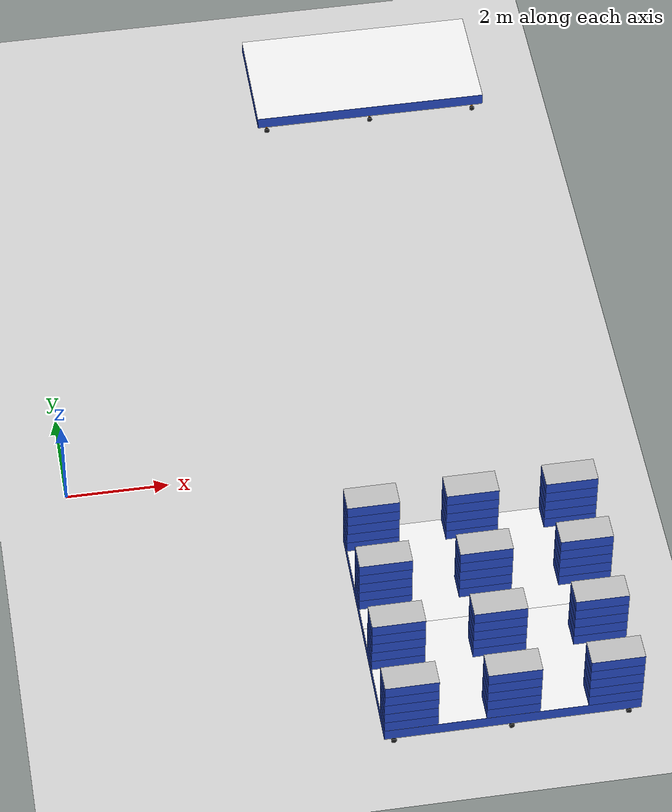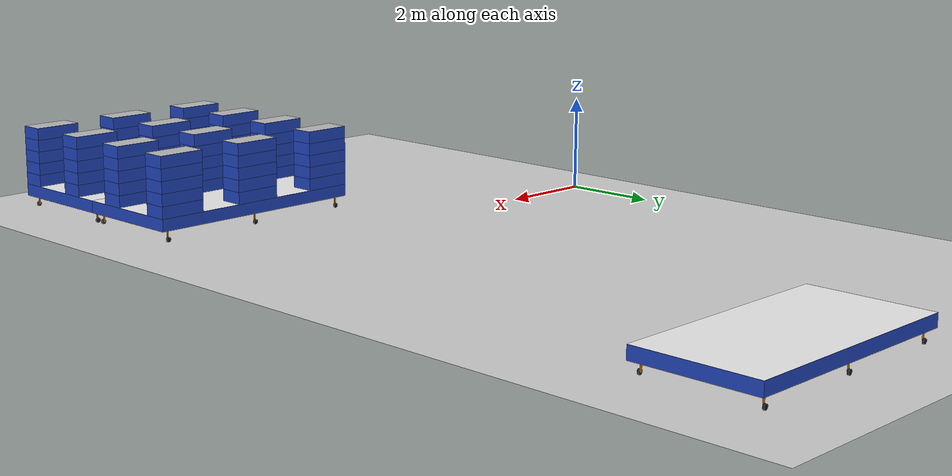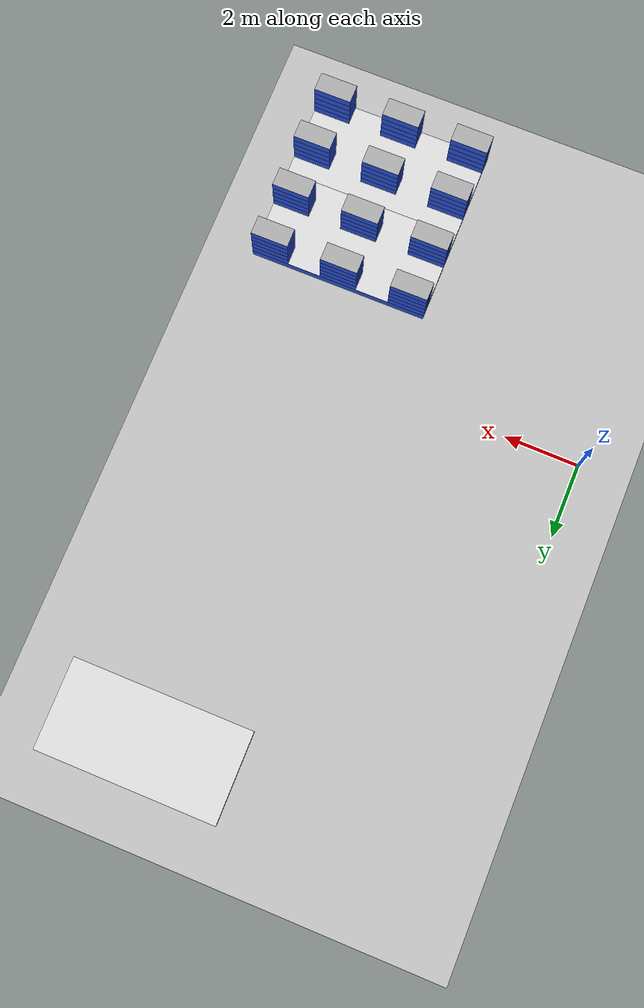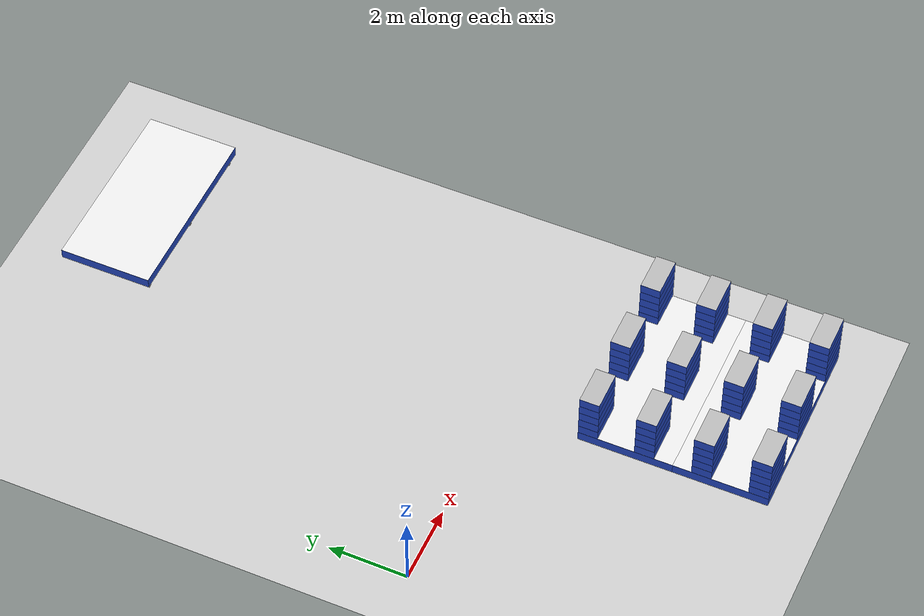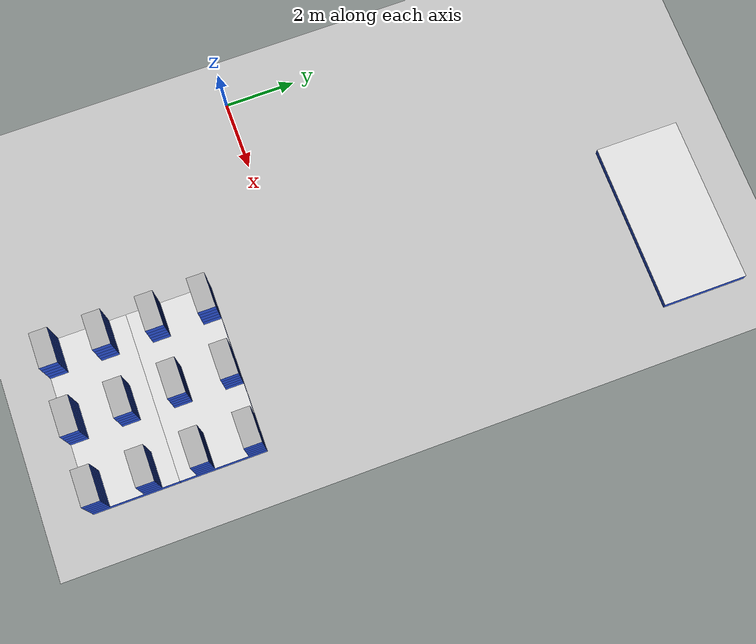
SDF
<?xml version="1.0" ?>
<sdf version="1.4">
  <world name="tian_gong_zhu_ta">
    <include>
      <uri>model://sun</uri>
    </include>
    <include>
      <uri>model://heliport</uri>
      <name>heliport</name>
      <static>true</static>
      <pose>0 0 0 0 0 3.1415926</pose>
    </include>
    <include>
      <uri>model://chassis</uri>
      <name>chassis</name>
      <static>true</static>
      <pose>7.5 10.5 0 0 0 0</pose>
    </include>
    <include>
      <uri>model://box_stack</uri>
      <name>box_stack</name>
      <pose>7.5 -4.5 0 0 0 0</pose>
    </include>
    <spherical_coordinates>
      <surface_model>EARTH_WGS84</surface_model>
      <latitude_deg>47.3667</latitude_deg>
      <longitude_deg>8.5500</longitude_deg>
      <elevation>500.0</elevation>
      <heading_deg>0</heading_deg>
    </spherical_coordinates>
    <physics type='ode'>
      <ode>
        <solver>
          <type>quick</type>
          <iters>1000</iters>
          <sor>1.3</sor>
        </solver>
        <constraints>
          <cfm>0</cfm>
          <erp>0.2</erp>
          <contact_max_correcting_vel>100</contact_max_correcting_vel>
          <contact_surface_layer>0.001</contact_surface_layer>
        </constraints>
      </ode>
      <max_step_size>0.005</max_step_size>
      <!-- real_time_factor = max_step_size * real_time_update_rate -->
      <real_time_factor>1</real_time_factor>
      <real_time_update_rate>200</real_time_update_rate>
      <gravity>0 0 -9.8</gravity>
    </physics>
  </world>
</sdf>

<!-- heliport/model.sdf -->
<sdf version='1.6'>
  <model name='heliport'>
    <static>true</static>
    <link name='ground'>
      <collision name='collision'>
        <geometry>
          <plane>
            <normal>0 0 1</normal>
            <size>45 30</size>
          </plane>
        </geometry>
        <surface>
          <friction>
            <ode>
              <mu>100</mu>
              <mu2>50</mu2>
            </ode>
          </friction>
          <bounce/>
          <contact>
            <ode/>
          </contact>
        </surface>
        <max_contacts>10</max_contacts>
      </collision>
      <visual name='visual'>
        <cast_shadows>0</cast_shadows>
        <geometry>
          <plane>
            <normal>0 0 1</normal>
            <size>45 30</size>
          </plane>
        </geometry>
        <material>
          <script>
            <uri>model://heliport/materials/scripts</uri>
            <uri>model://heliport/materials/textures</uri>
            <name>concrete_ground</name>
          </script>
        </material>
      </visual>
    </link>
  </model>
</sdf>

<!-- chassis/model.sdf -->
<sdf version='1.6'>
  <model name='chassis'>
    <static>false</static>
    <link name='base_link'>
      <inertial>
        <pose>0 0 0.375 0 0 0</pose>
        <mass>120</mass>
        <inertia>
          <ixx>58.225</ixx>
          <ixy>0</ixy>
          <ixz>0</ixz>
          <iyy>231.025</iyy>
          <iyz>0</iyz>
          <izz>288</izz>
        </inertia>
      </inertial>
      <collision name='base0'>
        <pose>0 0 0.375 0 0 0</pose>
        <geometry>
          <box>
            <size>4.8 2.4 0.25</size>
          </box>
        </geometry>
        <surface>
          <friction>
            <ode>
              <mu>100</mu>
              <mu2>50</mu2>
            </ode>
          </friction>
        </surface>
      </collision>
      <visual name='base0'>
        <cast_shadows>1</cast_shadows>
        <pose>0 0 0.375 0 0 0</pose>
        <geometry>
          <box>
            <size>4.8 2.4 0.25</size>
          </box>
        </geometry>
        <material>
          <script>
            <uri>file://media/materials/scripts/gazebo.material</uri>
            <name>Gazebo/Blue</name>
          </script>
        </material>
      </visual>
      <visual name='base1'>
        <cast_shadows>0</cast_shadows>
        <pose>0 0 0.502 0 0 0</pose>
        <geometry>
          <plane>
            <normal>0 0 1</normal>
            <size>4.8 2.4</size>
          </plane>
        </geometry>
        <material>
          <script>
            <uri>file://media/materials/scripts/gazebo.material</uri>
            <name>Gazebo/White</name>
          </script>
        </material>
      </visual>
      <visual name='base2'>
        <cast_shadows>0</cast_shadows>
        <pose>0 0 0.248 3.1415926 0 0</pose>
        <geometry>
          <plane>
            <normal>0 0 1</normal>
            <size>4.8 2.4</size>
          </plane>
        </geometry>
        <material>
          <script>
            <uri>file://media/materials/scripts/gazebo.material</uri>
            <name>Gazebo/White</name>
          </script>
        </material>
      </visual>
    </link>

    <joint name="wheel_joint0" type="fixed">
      <parent>base_link</parent>
      <child>wheel_link0</child>
    </joint>
    <joint name="wheel_joint1" type="fixed">
      <parent>base_link</parent>
      <child>wheel_link1</child>
    </joint>
    <joint name="wheel_joint2" type="fixed">
      <parent>base_link</parent>
      <child>wheel_link2</child>
    </joint>
    <joint name="wheel_joint3" type="fixed">
      <parent>base_link</parent>
      <child>wheel_link3</child>
    </joint>
    <joint name="wheel_joint4" type="fixed">
      <parent>base_link</parent>
      <child>wheel_link4</child>
    </joint>
    <joint name="wheel_joint5" type="fixed">
      <parent>base_link</parent>
      <child>wheel_link5</child>
    </joint>

    <link name='wheel_link0'>
      <pose>2.2 1.1 0 0 0 0</pose>
      <collision name='wheel'>
        <pose>0 0 0.05 1.5707963 0 0</pose>
        <geometry>
          <cylinder>
            <radius>0.05</radius>
            <length>0.03</length>
          </cylinder>
        </geometry>
        <surface>
          <friction>
            <ode>
              <mu>100</mu>
              <mu2>50</mu2>
            </ode>
          </friction>
        </surface>
      </collision>
      <collision name='rod'>
        <pose>0 -0.025 0.15 0 0 0</pose>
        <geometry>
          <box>
            <size>0.03 0.02 0.2</size>
          </box>
        </geometry>
      </collision>
      <visual name='wheel'>
        <cast_shadows>0</cast_shadows>
        <pose>0 0 0.05 1.5707963 0 0</pose>
        <geometry>
          <cylinder>
            <radius>0.05</radius>
            <length>0.03</length>
          </cylinder>
        </geometry>
        <material>
          <script>
            <uri>file://media/materials/scripts/gazebo.material</uri>
            <name>Gazebo/Black</name>
          </script>
        </material>
      </visual>
      <visual name='rod'>
        <cast_shadows>0</cast_shadows>
        <pose>0 -0.025 0.15 0 0 0</pose>
        <geometry>
          <box>
            <size>0.03 0.02 0.2</size>
          </box>
        </geometry>
        <material>
          <script>
            <uri>file://media/materials/scripts/gazebo.material</uri>
            <name>Gazebo/Orange</name>
          </script>
        </material>
      </visual>
    </link>

    <link name='wheel_link1'>
      <pose>0 1.1 0 0 0 0</pose>
      <collision name='wheel'>
        <pose>0 0 0.05 1.5707963 0 0</pose>
        <geometry>
          <cylinder>
            <radius>0.05</radius>
            <length>0.03</length>
          </cylinder>
        </geometry>
        <surface>
          <friction>
            <ode>
              <mu>100</mu>
              <mu2>50</mu2>
            </ode>
          </friction>
        </surface>
      </collision>
      <collision name='rod'>
        <pose>0 -0.025 0.15 0 0 0</pose>
        <geometry>
          <box>
            <size>0.03 0.02 0.2</size>
          </box>
        </geometry>
      </collision>
      <visual name='wheel'>
        <cast_shadows>0</cast_shadows>
        <pose>0 0 0.05 1.5707963 0 0</pose>
        <geometry>
          <cylinder>
            <radius>0.05</radius>
            <length>0.03</length>
          </cylinder>
        </geometry>
        <material>
          <script>
            <uri>file://media/materials/scripts/gazebo.material</uri>
            <name>Gazebo/Black</name>
          </script>
        </material>
      </visual>
      <visual name='rod'>
        <cast_shadows>0</cast_shadows>
        <pose>0 -0.025 0.15 0 0 0</pose>
        <geometry>
          <box>
            <size>0.03 0.02 0.2</size>
          </box>
        </geometry>
        <material>
          <script>
            <uri>file://media/materials/scripts/gazebo.material</uri>
            <name>Gazebo/Orange</name>
          </script>
        </material>
      </visual>
    </link>

    <link name='wheel_link2'>
      <pose>-2.2 1.1 0 0 0 0</pose>
      <collision name='wheel'>
        <pose>0 0 0.05 1.5707963 0 0</pose>
        <geometry>
          <cylinder>
            <radius>0.05</radius>
            <length>0.03</length>
          </cylinder>
        </geometry>
        <surface>
          <friction>
            <ode>
              <mu>100</mu>
              <mu2>50</mu2>
            </ode>
          </friction>
        </surface>
      </collision>
      <collision name='rod'>
        <pose>0 -0.025 0.15 0 0 0</pose>
        <geometry>
          <box>
            <size>0.03 0.02 0.2</size>
          </box>
        </geometry>
      </collision>
      <visual name='wheel'>
        <cast_shadows>0</cast_shadows>
        <pose>0 0 0.05 1.5707963 0 0</pose>
        <geometry>
          <cylinder>
            <radius>0.05</radius>
            <length>0.03</length>
          </cylinder>
        </geometry>
        <material>
          <script>
            <uri>file://media/materials/scripts/gazebo.material</uri>
            <name>Gazebo/Black</name>
          </script>
        </material>
      </visual>
      <visual name='rod'>
        <cast_shadows>0</cast_shadows>
        <pose>0 -0.025 0.15 0 0 0</pose>
        <geometry>
          <box>
            <size>0.03 0.02 0.2</size>
          </box>
        </geometry>
        <material>
          <script>
            <uri>file://media/materials/scripts/gazebo.material</uri>
            <name>Gazebo/Orange</name>
          </script>
        </material>
      </visual>
    </link>

    <link name='wheel_link3'>
      <pose>-2.2 -1.1 0 0 0 3.1415926</pose>
      <collision name='wheel'>
        <pose>0 0 0.05 1.5707963 0 0</pose>
        <geometry>
          <cylinder>
            <radius>0.05</radius>
            <length>0.03</length>
          </cylinder>
        </geometry>
        <surface>
          <friction>
            <ode>
              <mu>100</mu>
              <mu2>50</mu2>
            </ode>
          </friction>
        </surface>
      </collision>
      <collision name='rod'>
        <pose>0 -0.025 0.15 0 0 0</pose>
        <geometry>
          <box>
            <size>0.03 0.02 0.2</size>
          </box>
        </geometry>
      </collision>
      <visual name='wheel'>
        <cast_shadows>0</cast_shadows>
        <pose>0 0 0.05 1.5707963 0 0</pose>
        <geometry>
          <cylinder>
            <radius>0.05</radius>
            <length>0.03</length>
          </cylinder>
        </geometry>
        <material>
          <script>
            <uri>file://media/materials/scripts/gazebo.material</uri>
            <name>Gazebo/Black</name>
          </script>
        </material>
      </visual>
      <visual name='rod'>
        <cast_shadows>0</cast_shadows>
        <pose>0 -0.025 0.15 0 0 0</pose>
        <geometry>
          <box>
            <size>0.03 0.02 0.2</size>
          </box>
        </geometry>
        <material>
          <script>
            <uri>file://media/materials/scripts/gazebo.material</uri>
            <name>Gazebo/Orange</name>
          </script>
        </material>
      </visual>
    </link>

    <link name='wheel_link4'>
      <pose>0.0 -1.1 0 0 0 3.1415926</pose>
      <collision name='wheel'>
        <pose>0 0 0.05 1.5707963 0 0</pose>
        <geometry>
          <cylinder>
            <radius>0.05</radius>
            <length>0.03</length>
          </cylinder>
        </geometry>
        <surface>
          <friction>
            <ode>
              <mu>100</mu>
              <mu2>50</mu2>
            </ode>
          </friction>
        </surface>
      </collision>
      <collision name='rod'>
        <pose>0 -0.025 0.15 0 0 0</pose>
        <geometry>
          <box>
            <size>0.03 0.02 0.2</size>
          </box>
        </geometry>
      </collision>
      <visual name='wheel'>
        <cast_shadows>0</cast_shadows>
        <pose>0 0 0.05 1.5707963 0 0</pose>
        <geometry>
          <cylinder>
            <radius>0.05</radius>
            <length>0.03</length>
          </cylinder>
        </geometry>
        <material>
          <script>
            <uri>file://media/materials/scripts/gazebo.material</uri>
            <name>Gazebo/Black</name>
          </script>
        </material>
      </visual>
      <visual name='rod'>
        <cast_shadows>0</cast_shadows>
        <pose>0 -0.025 0.15 0 0 0</pose>
        <geometry>
          <box>
            <size>0.03 0.02 0.2</size>
          </box>
        </geometry>
        <material>
          <script>
            <uri>file://media/materials/scripts/gazebo.material</uri>
            <name>Gazebo/Orange</name>
          </script>
        </material>
      </visual>
    </link>

    <link name='wheel_link5'>
      <pose>2.2 -1.1 0 0 0 3.1415926</pose>
      <collision name='wheel'>
        <pose>0 0 0.05 1.5707963 0 0</pose>
        <geometry>
          <cylinder>
            <radius>0.05</radius>
            <length>0.03</length>
          </cylinder>
        </geometry>
        <surface>
          <friction>
            <ode>
              <mu>100</mu>
              <mu2>50</mu2>
            </ode>
          </friction>
        </surface>
      </collision>
      <collision name='rod'>
        <pose>0 -0.025 0.15 0 0 0</pose>
        <geometry>
          <box>
            <size>0.03 0.02 0.2</size>
          </box>
        </geometry>
      </collision>
      <visual name='wheel'>
        <cast_shadows>0</cast_shadows>
        <pose>0 0 0.05 1.5707963 0 0</pose>
        <geometry>
          <cylinder>
            <radius>0.05</radius>
            <length>0.03</length>
          </cylinder>
        </geometry>
        <material>
          <script>
            <uri>file://media/materials/scripts/gazebo.material</uri>
            <name>Gazebo/Black</name>
          </script>
        </material>
      </visual>
      <visual name='rod'>
        <cast_shadows>0</cast_shadows>
        <pose>0 -0.025 0.15 0 0 0</pose>
        <geometry>
          <box>
            <size>0.03 0.02 0.2</size>
          </box>
        </geometry>
        <material>
          <script>
            <uri>file://media/materials/scripts/gazebo.material</uri>
            <name>Gazebo/Orange</name>
          </script>
        </material>
      </visual>
    </link>
  </model>
</sdf>

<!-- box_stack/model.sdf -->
<sdf version='1.6'>
  <model name='box_stack'>
    <self_collide>true</self_collide>
    <include>
      <uri>model://chassis</uri>
      <name>chassis0</name>
      <static>true</static>
      <pose>0 1.2 0 0 0 0</pose>
    </include>
    <include>
      <uri>model://chassis</uri>
      <name>chassis1</name>
      <static>true</static>
      <pose>0 -1.2 0 0 0 0</pose>
    </include>
    <include>
      <uri>model://box_level</uri>
      <name>box_level0</name>
      <static>false</static>
      <pose>0 0 0.5 0 0 0</pose>
    </include>
    <include>
      <uri>model://box_level</uri>
      <name>box_level1</name>
      <static>false</static>
      <pose>0 0 0.75 0 0 0</pose>
    </include>
    <include>
      <uri>model://box_level</uri>
      <name>box_level2</name>
      <static>false</static>
      <pose>0 0 1 0 0 0</pose>
    </include>
    <include>
      <uri>model://box_level</uri>
      <name>box_level3</name>
      <static>false</static>
      <pose>0 0 1.25 0 0 0</pose>
    </include>
    <include>
      <uri>model://box_level</uri>
      <name>box_level4</name>
      <static>false</static>
      <pose>0 0 1.5 0 0 0</pose>
    </include>
  </model>
</sdf>

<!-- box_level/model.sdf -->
<sdf version='1.6'>
  <model name='box_level'>
    <static>false</static>
    <include>
      <uri>model://logo_box</uri>
      <name>box0</name>
      <static>false</static>
      <pose>1.9 2.15 0 0 0 3.1415926</pose>
    </include>
    <include>
      <uri>model://logo_box</uri>
      <name>box1</name>
      <static>false</static>
      <pose>0 2.15 0 0 0 3.1415926</pose>
    </include>
    <include>
      <uri>model://logo_box</uri>
      <name>box2</name>
      <static>false</static>
      <pose>-1.9 2.15 0 0 0 3.1415926</pose>
    </include>
    <include>
      <uri>model://logo_box</uri>
      <name>box3</name>
      <static>false</static>
      <pose>1.9 0.72 0 0 0 3.1415926</pose>
    </include>
    <include>
      <uri>model://logo_box</uri>
      <name>box4</name>
      <static>false</static>
      <pose>0 0.72 0 0 0 3.1415926</pose>
    </include>
    <include>
      <uri>model://logo_box</uri>
      <name>box5</name>
      <static>false</static>
      <pose>-1.9 0.72 0 0 0 3.1415926</pose>
    </include>
    <include>
      <uri>model://logo_box</uri>
      <name>box6</name>
      <static>false</static>
      <pose>1.9 -0.72 0 0 0 3.1415926</pose>
    </include>
    <include>
      <uri>model://logo_box</uri>
      <name>box7</name>
      <static>false</static>
      <pose>0 -0.72 0 0 0 3.1415926</pose>
    </include>
    <include>
      <uri>model://logo_box</uri>
      <name>box8</name>
      <static>false</static>
      <pose>-1.9 -0.72 0 0 0 3.1415926</pose>
    </include>
    <include>
      <uri>model://logo_box</uri>
      <name>box9</name>
      <static>false</static>
      <pose>1.9 -2.15 0 0 0 3.1415926</pose>
    </include>
    <include>
      <uri>model://logo_box</uri>
      <name>box10</name>
      <static>false</static>
      <pose>0 -2.15 0 0 0 3.1415926</pose>
    </include>
    <include>
      <uri>model://logo_box</uri>
      <name>box11</name>
      <static>false</static>
      <pose>-1.9 -2.15 0 0 0 3.1415926</pose>
    </include>
  </model>
</sdf>

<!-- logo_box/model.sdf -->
<sdf version='1.6'>
  <model name='logo_box'>
    <static>false</static>
    <link name='box'>
      <pose>0 0 0.125 0 0 0</pose>
      <inertial>
        <mass>2</mass>
        <inertia>
          <ixx>0.052083</ixx>
          <ixy>0</ixy>
          <ixz>0</ixz>
          <iyy>0.177083</iyy>
          <iyz>0</iyz>
          <izz>0.208333</izz>
        </inertia>
      </inertial>
      <visual name='box'>
        <pose>0 0 0 0 0 0</pose>
        <cast_shadows>true</cast_shadows>
        <geometry>
          <box>
            <size>1 0.5 0.25</size>
          </box>
        </geometry>
        <material>
          <script>
            <uri>file://media/materials/scripts/gazebo.material</uri>
            <name>Gazebo/Blue</name>
          </script>
        </material>
      </visual>
      <visual name='logo'>
        <pose>-0 0 0.127 0 0 0</pose>
        <cast_shadows>false</cast_shadows>
        <geometry>
          <plane>
            <normal>0 0 1</normal>
            <size>1 0.5</size>
          </plane>
        </geometry>
        <material>
          <script>
            <uri>model://logo_box/materials/scripts</uri>
            <uri>model://logo_box/materials/textures</uri>
            <name>ibvs/logo</name>
          </script>
        </material>
      </visual>
      <collision name='box'>
        <pose>0 0 0 0 0 0</pose>
        <geometry>
          <box>
            <size>1 0.5 0.25</size>
          </box>
        </geometry>
        <surface>
          <friction>
            <ode>
              <mu>100</mu>
              <mu2>50</mu2>
            </ode>
          </friction>
        </surface>
      </collision>
    </link>
  </model>
</sdf>
